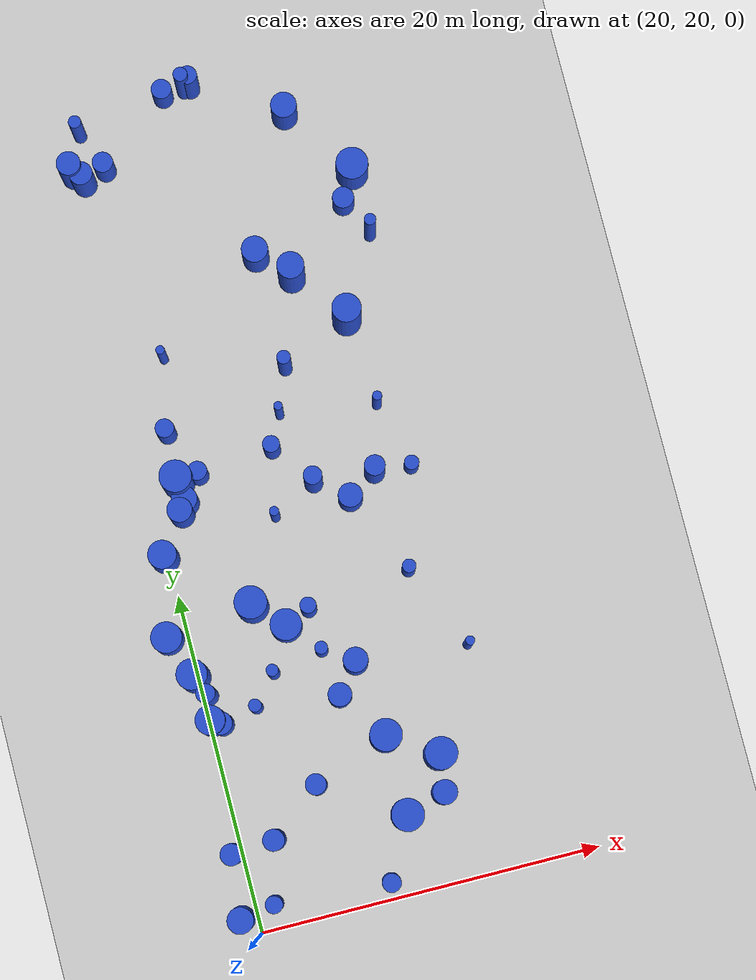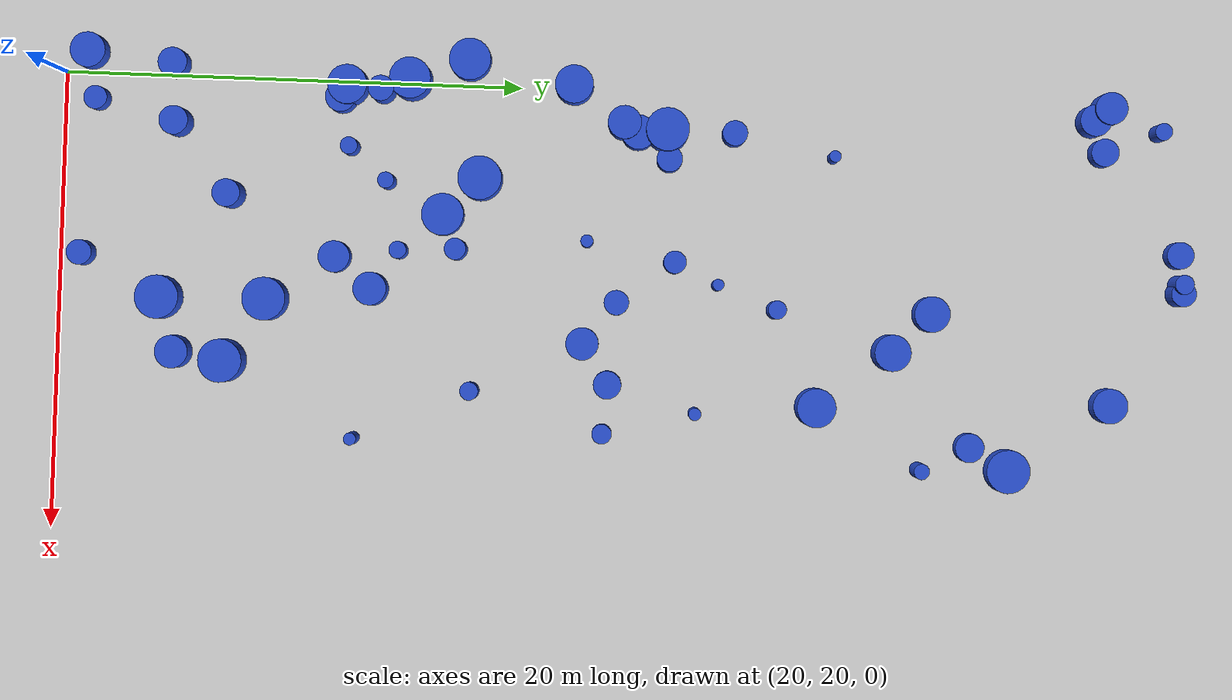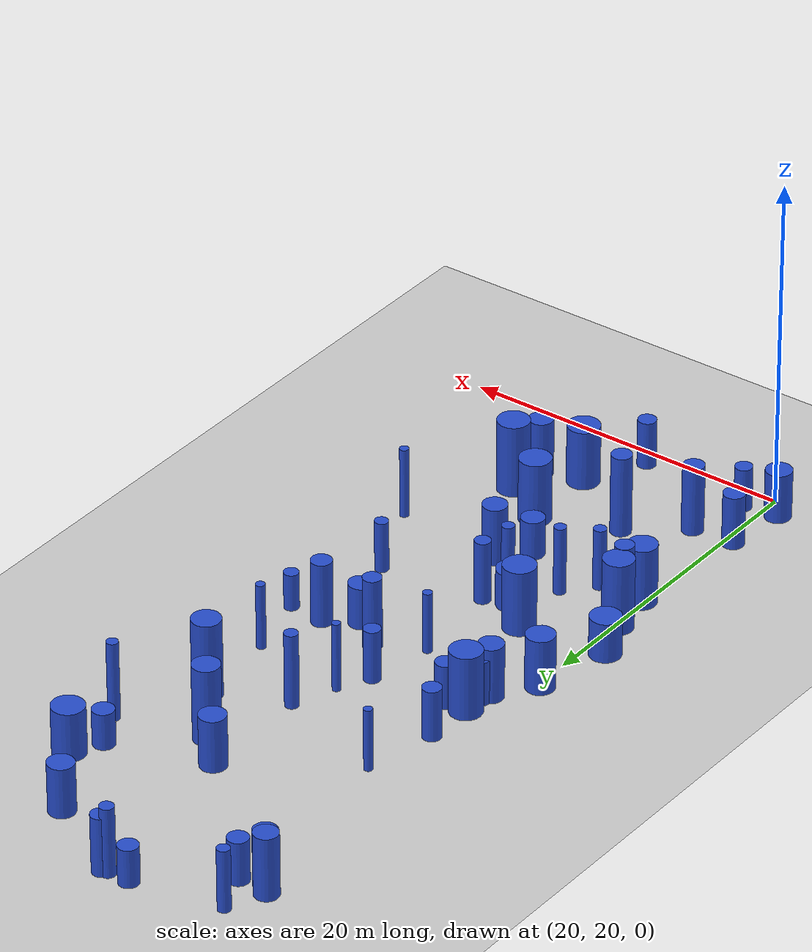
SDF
<sdf version="1.7">
 <world name="default">
  <model name="ground_plane">
   <static>1</static>
   <link name="link">
    <collision name="collision">
     <geometry><plane><normal>0 0 1</normal><size>100 100</size></plane></geometry>
     <surface>
      <contact><collide_bitmask>65535</collide_bitmask></contact>
      <friction><ode><mu>100</mu><mu2>50</mu2></ode></friction>
     </surface>
    </collision>
    <visual name="visual">
     <cast_shadows>0</cast_shadows>
     <geometry><plane><normal>0 0 1</normal><size>100 100</size></plane></geometry>
     <material>
      <script><uri>file://media/materials/scripts/gazebo.material</uri><name>Gazebo/Grey</name></script>
     </material>
    </visual>
   </link>
  </model>
  <model name="8">
   <static>0</static>
   <link name="link">
    <inertial>
     <mass>2</mass>
     <inertia><ixx>2.56634</ixx><ixy>0</ixy><ixz>0</ixz><iyy>2.56634</iyy><iyz>0</iyz><izz>0.222806</izz></inertia>
    </inertial>
    <collision name="collision">
     <geometry><cylinder><length>3.83792</length><radius>0.472024</radius></cylinder></geometry>
     <surface><contact><collide_without_contact>1</collide_without_contact></contact></surface>
    </collision>
    <visual name="visual">
     <geometry><cylinder><length>3.83792</length><radius>0.472024</radius></cylinder></geometry>
     <material>
      <script><uri>file://media/materials/scripts/gazebo.material</uri><name>Gazebo/Blue</name></script>
     </material>
    </visual>
    <gravity>0</gravity>
   </link>
   <pose>27.1858 37.3797 1.91896 0 -0 0</pose>
  </model>
  <model name="22">
   <static>0</static>
   <link name="link">
    <inertial>
     <mass>2</mass>
     <inertia><ixx>1.84413</ixx><ixy>0</ixy><ixz>0</ixz><iyy>1.84413</iyy><iyz>0</iyz><izz>0.585229</izz></inertia>
    </inertial>
    <collision name="collision">
     <geometry><cylinder><length>3.05108</length><radius>0.765002</radius></cylinder></geometry>
     <surface><contact><collide_without_contact>1</collide_without_contact></contact></surface>
    </collision>
    <visual name="visual">
     <geometry><cylinder><length>3.05108</length><radius>0.765002</radius></cylinder></geometry>
     <material>
      <script><uri>file://media/materials/scripts/gazebo.material</uri><name>Gazebo/Blue</name></script>
     </material>
    </visual>
    <gravity>0</gravity>
   </link>
   <pose>32.9776 66.0821 1.52554 0 -0 0</pose>
  </model>
  <model name="26">
   <static>0</static>
   <link name="link">
    <inertial>
     <mass>2</mass>
     <inertia><ixx>1.40947</ixx><ixy>0</ixy><ixz>0</ixz><iyy>1.40947</iyy><iyz>0</iyz><izz>0.829551</izz></inertia>
    </inertial>
    <collision name="collision">
     <geometry><cylinder><length>2.44298</length><radius>0.910797</radius></cylinder></geometry>
     <surface><contact><collide_without_contact>1</collide_without_contact></contact></surface>
    </collision>
    <visual name="visual">
     <geometry><cylinder><length>2.44298</length><radius>0.910797</radius></cylinder></geometry>
     <material>
      <script><uri>file://media/materials/scripts/gazebo.material</uri><name>Gazebo/Blue</name></script>
     </material>
    </visual>
    <gravity>0</gravity>
   </link>
   <pose>18.8758 37.6973 1.22149 0 -0 0</pose>
  </model>
  <model name="45">
   <static>0</static>
   <link name="link">
    <inertial>
     <mass>2</mass>
     <inertia><ixx>1.79897</ixx><ixy>0</ixy><ixz>0</ixz><iyy>1.79897</iyy><iyz>0</iyz><izz>0.441379</izz></inertia>
    </inertial>
    <collision name="collision">
     <geometry><cylinder><length>3.07729</length><radius>0.664364</radius></cylinder></geometry>
     <surface><contact><collide_without_contact>1</collide_without_contact></contact></surface>
    </collision>
    <visual name="visual">
     <geometry><cylinder><length>3.07729</length><radius>0.664364</radius></cylinder></geometry>
     <material>
      <script><uri>file://media/materials/scripts/gazebo.material</uri><name>Gazebo/Blue</name></script>
     </material>
    </visual>
    <gravity>0</gravity>
   </link>
   <pose>20.7318 32.1487 1.53864 0 -0 0</pose>
  </model>
  <model name="57">
   <static>0</static>
   <link name="link">
    <inertial>
     <mass>2</mass>
     <inertia><ixx>2.18418</ixx><ixy>0</ixy><ixz>0</ixz><iyy>2.18418</iyy><iyz>0</iyz><izz>0.482198</izz></inertia>
    </inertial>
    <collision name="collision">
     <geometry><cylinder><length>3.41445</length><radius>0.694405</radius></cylinder></geometry>
     <surface><contact><collide_without_contact>1</collide_without_contact></contact></surface>
    </collision>
    <visual name="visual">
     <geometry><cylinder><length>3.41445</length><radius>0.694405</radius></cylinder></geometry>
     <material>
      <script><uri>file://media/materials/scripts/gazebo.material</uri><name>Gazebo/Blue</name></script>
     </material>
    </visual>
    <gravity>0</gravity>
   </link>
   <pose>20.5826 64.9886 1.70723 0 -0 0</pose>
  </model>
  <model name="74">
   <static>0</static>
   <link name="link">
    <inertial>
     <mass>2</mass>
     <inertia><ixx>3.58592</ixx><ixy>0</ixy><ixz>0</ixz><iyy>3.58592</iyy><iyz>0</iyz><izz>0.162136</izz></inertia>
    </inertial>
    <collision name="collision">
     <geometry><cylinder><length>4.58575</length><radius>0.402661</radius></cylinder></geometry>
     <surface><contact><collide_without_contact>1</collide_without_contact></contact></surface>
    </collision>
    <visual name="visual">
     <geometry><cylinder><length>4.58575</length><radius>0.402661</radius></cylinder></geometry>
     <material>
      <script><uri>file://media/materials/scripts/gazebo.material</uri><name>Gazebo/Blue</name></script>
     </material>
    </visual>
    <gravity>0</gravity>
   </link>
   <pose>29.3238 51.4291 2.29288 0 -0 0</pose>
  </model>
  <model name="79">
   <static>0</static>
   <link name="link">
    <inertial>
     <mass>2</mass>
     <inertia><ixx>2.97852</ixx><ixy>0</ixy><ixz>0</ixz><iyy>2.97852</iyy><iyz>0</iyz><izz>0.125524</izz></inertia>
    </inertial>
    <collision name="collision">
     <geometry><cylinder><length>4.18265</length><radius>0.354294</radius></cylinder></geometry>
     <surface><contact><collide_without_contact>1</collide_without_contact></contact></surface>
    </collision>
    <visual name="visual">
     <geometry><cylinder><length>4.18265</length><radius>0.354294</radius></cylinder></geometry>
     <material>
      <script><uri>file://media/materials/scripts/gazebo.material</uri><name>Gazebo/Blue</name></script>
     </material>
    </visual>
    <gravity>0</gravity>
   </link>
   <pose>24.318 34.2798 2.09133 0 -0 0</pose>
  </model>
  <model name="82">
   <static>0</static>
   <link name="link">
    <inertial>
     <mass>2</mass>
     <inertia><ixx>1.92476</ixx><ixy>0</ixy><ixz>0</ixz><iyy>1.92476</iyy><iyz>0</iyz><izz>0.900452</izz></inertia>
    </inertial>
    <collision name="collision">
     <geometry><cylinder><length>2.97442</length><radius>0.948921</radius></cylinder></geometry>
     <surface><contact><collide_without_contact>1</collide_without_contact></contact></surface>
    </collision>
    <visual name="visual">
     <geometry><cylinder><length>2.97442</length><radius>0.948921</radius></cylinder></geometry>
     <material>
      <script><uri>file://media/materials/scripts/gazebo.material</uri><name>Gazebo/Blue</name></script>
     </material>
    </visual>
    <gravity>0</gravity>
   </link>
   <pose>35.9886 61.7636 1.48721 0 -0 0</pose>
  </model>
  <model name="99">
   <static>0</static>
   <link name="link">
    <inertial>
     <mass>2</mass>
     <inertia><ixx>2.24551</ixx><ixy>0</ixy><ixz>0</ixz><iyy>2.24551</iyy><iyz>0</iyz><izz>0.698313</izz></inertia>
    </inertial>
    <collision name="collision">
     <geometry><cylinder><length>3.37315</length><radius>0.835651</radius></cylinder></geometry>
     <surface><contact><collide_without_contact>1</collide_without_contact></contact></surface>
    </collision>
    <visual name="visual">
     <geometry><cylinder><length>3.37315</length><radius>0.835651</radius></cylinder></geometry>
     <material>
      <script><uri>file://media/materials/scripts/gazebo.material</uri><name>Gazebo/Blue</name></script>
     </material>
    </visual>
    <gravity>0</gravity>
   </link>
   <pose>19.8304 42.2869 1.68657 0 -0 0</pose>
  </model>
  <model name="100">
   <static>0</static>
   <link name="link">
    <inertial>
     <mass>2</mass>
     <inertia><ixx>1.16576</ixx><ixy>0</ixy><ixz>0</ixz><iyy>1.16576</iyy><iyz>0</iyz><izz>0.479179</izz></inertia>
    </inertial>
    <collision name="collision">
     <geometry><cylinder><length>2.35733</length><radius>0.692228</radius></cylinder></geometry>
     <surface><contact><collide_without_contact>1</collide_without_contact></contact></surface>
    </collision>
    <visual name="visual">
     <geometry><cylinder><length>2.35733</length><radius>0.692228</radius></cylinder></geometry>
     <material>
      <script><uri>file://media/materials/scripts/gazebo.material</uri><name>Gazebo/Blue</name></script>
     </material>
    </visual>
    <gravity>0</gravity>
   </link>
   <pose>27.6909 32.0771 1.17867 0 -0 0</pose>
  </model>
  <model name="102">
   <static>0</static>
   <link name="link">
    <inertial>
     <mass>2</mass>
     <inertia><ixx>2.03174</ixx><ixy>0</ixy><ixz>0</ixz><iyy>2.03174</iyy><iyz>0</iyz><izz>0.142404</izz></inertia>
    </inertial>
    <collision name="collision">
     <geometry><cylinder><length>3.42975</length><radius>0.377365</radius></cylinder></geometry>
     <surface><contact><collide_without_contact>1</collide_without_contact></contact></surface>
    </collision>
    <visual name="visual">
     <geometry><cylinder><length>3.42975</length><radius>0.377365</radius></cylinder></geometry>
     <material>
      <script><uri>file://media/materials/scripts/gazebo.material</uri><name>Gazebo/Blue</name></script>
     </material>
    </visual>
    <gravity>0</gravity>
   </link>
   <pose>27.3172 34.8756 1.71488 0 -0 0</pose>
  </model>
  <model name="120">
   <static>0</static>
   <link name="link">
    <inertial>
     <mass>2</mass>
     <inertia><ixx>1.34975</ixx><ixy>0</ixy><ixz>0</ixz><iyy>1.34975</iyy><iyz>0</iyz><izz>0.510108</izz></inertia>
    </inertial>
    <collision name="collision">
     <geometry><cylinder><length>2.56285</length><radius>0.714219</radius></cylinder></geometry>
     <surface><contact><collide_without_contact>1</collide_without_contact></contact></surface>
    </collision>
    <visual name="visual">
     <geometry><cylinder><length>2.56285</length><radius>0.714219</radius></cylinder></geometry>
     <material>
      <script><uri>file://media/materials/scripts/gazebo.material</uri><name>Gazebo/Blue</name></script>
     </material>
    </visual>
    <gravity>0</gravity>
   </link>
   <pose>31.1048 43.0271 1.28142 0 -0 0</pose>
  </model>
  <model name="126">
   <static>0</static>
   <link name="link">
    <inertial>
     <mass>2</mass>
     <inertia><ixx>1.99303</ixx><ixy>0</ixy><ixz>0</ixz><iyy>1.99303</iyy><iyz>0</iyz><izz>0.607698</izz></inertia>
    </inertial>
    <collision name="collision">
     <geometry><cylinder><length>3.18356</length><radius>0.77955</radius></cylinder></geometry>
     <surface><contact><collide_without_contact>1</collide_without_contact></contact></surface>
    </collision>
    <visual name="visual">
     <geometry><cylinder><length>3.18356</length><radius>0.77955</radius></cylinder></geometry>
     <material>
      <script><uri>file://media/materials/scripts/gazebo.material</uri><name>Gazebo/Blue</name></script>
     </material>
    </visual>
    <gravity>0</gravity>
   </link>
   <pose>29.2657 58.2032 1.59178 0 -0 0</pose>
  </model>
  <model name="128">
   <static>0</static>
   <link name="link">
    <inertial>
     <mass>2</mass>
     <inertia><ixx>2.677</ixx><ixy>0</ixy><ixz>0</ixz><iyy>2.677</iyy><iyz>0</iyz><izz>0.902624</izz></inertia>
    </inertial>
    <collision name="collision">
     <geometry><cylinder><length>3.65433</length><radius>0.950065</radius></cylinder></geometry>
     <surface><contact><collide_without_contact>1</collide_without_contact></contact></surface>
    </collision>
    <visual name="visual">
     <geometry><cylinder><length>3.65433</length><radius>0.950065</radius></cylinder></geometry>
     <material>
      <script><uri>file://media/materials/scripts/gazebo.material</uri><name>Gazebo/Blue</name></script>
     </material>
    </visual>
    <gravity>0</gravity>
   </link>
   <pose>29.7312 24.4966 1.82716 0 -0 0</pose>
  </model>
  <model name="129">
   <static>0</static>
   <link name="link">
    <inertial>
     <mass>2</mass>
     <inertia><ixx>4.2289</ixx><ixy>0</ixy><ixz>0</ixz><iyy>4.2289</iyy><iyz>0</iyz><izz>0.722048</izz></inertia>
    </inertial>
    <collision name="collision">
     <geometry><cylinder><length>4.81739</length><radius>0.849734</radius></cylinder></geometry>
     <surface><contact><collide_without_contact>1</collide_without_contact></contact></surface>
    </collision>
    <visual name="visual">
     <geometry><cylinder><length>4.81739</length><radius>0.849734</radius></cylinder></geometry>
     <material>
      <script><uri>file://media/materials/scripts/gazebo.material</uri><name>Gazebo/Blue</name></script>
     </material>
    </visual>
    <gravity>0</gravity>
   </link>
   <pose>33.5048 53.2725 2.40869 0 -0 0</pose>
  </model>
  <model name="136">
   <static>0</static>
   <link name="link">
    <inertial>
     <mass>2</mass>
     <inertia>
      <ixx>2.36535</ixx>
      <ixy>0</ixy>
      <ixz>0</ixz>
      <iyy>2.36535</iyy>
      <iyz>0</iyz>
      <izz>0.0754725</izz>
     </inertia>
    </inertial>
    <collision name="collision">
     <geometry><cylinder><length>3.73706</length><radius>0.274723</radius></cylinder></geometry>
     <surface><contact><collide_without_contact>1</collide_without_contact></contact></surface>
    </collision>
    <visual name="visual">
     <geometry><cylinder><length>3.73706</length><radius>0.274723</radius></cylinder></geometry>
     <material>
      <script><uri>file://media/materials/scripts/gazebo.material</uri><name>Gazebo/Blue</name></script>
     </material>
    </visual>
    <gravity>0</gravity>
   </link>
   <pose>26.6336 43.0819 1.86853 0 -0 0</pose>
  </model>
  <model name="141">
   <static>0</static>
   <link name="link">
    <inertial>
     <mass>2</mass>
     <inertia><ixx>2.67739</ixx><ixy>0</ixy><ixz>0</ixz><iyy>2.67739</iyy><iyz>0</iyz><izz>0.739102</izz></inertia>
    </inertial>
    <collision name="collision">
     <geometry><cylinder><length>3.72116</length><radius>0.85971</radius></cylinder></geometry>
     <surface><contact><collide_without_contact>1</collide_without_contact></contact></surface>
    </collision>
    <visual name="visual">
     <geometry><cylinder><length>3.72116</length><radius>0.85971</radius></cylinder></geometry>
     <material>
      <script><uri>file://media/materials/scripts/gazebo.material</uri><name>Gazebo/Blue</name></script>
     </material>
    </visual>
    <gravity>0</gravity>
   </link>
   <pose>20.2068 32.4414 1.86058 0 -0 0</pose>
  </model>
  <model name="144">
   <static>0</static>
   <link name="link">
    <inertial>
     <mass>2</mass>
     <inertia><ixx>2.96724</ixx><ixy>0</ixy><ixz>0</ixz><iyy>2.96724</iyy><iyz>0</iyz><izz>0.88856</izz></inertia>
    </inertial>
    <collision name="collision">
     <geometry><cylinder><length>3.89073</length><radius>0.942635</radius></cylinder></geometry>
     <surface><contact><collide_without_contact>1</collide_without_contact></contact></surface>
    </collision>
    <visual name="visual">
     <geometry><cylinder><length>3.89073</length><radius>0.942635</radius></cylinder></geometry>
     <material>
      <script><uri>file://media/materials/scripts/gazebo.material</uri><name>Gazebo/Blue</name></script>
     </material>
    </visual>
    <gravity>0</gravity>
   </link>
   <pose>21.6567 46.4145 1.94536 0 -0 0</pose>
  </model>
  <model name="147">
   <static>0</static>
   <link name="link">
    <inertial>
     <mass>2</mass>
     <inertia><ixx>1.3619</ixx><ixy>0</ixy><ixz>0</ixz><iyy>1.3619</iyy><iyz>0</iyz><izz>0.369863</izz></inertia>
    </inertial>
    <collision name="collision">
     <geometry><cylinder><length>2.65741</length><radius>0.608163</radius></cylinder></geometry>
     <surface><contact><collide_without_contact>1</collide_without_contact></contact></surface>
    </collision>
    <visual name="visual">
     <geometry><cylinder><length>2.65741</length><radius>0.608163</radius></cylinder></geometry>
     <material>
      <script><uri>file://media/materials/scripts/gazebo.material</uri><name>Gazebo/Blue</name></script>
     </material>
    </visual>
    <gravity>0</gravity>
   </link>
   <pose>21.9552 65.4838 1.3287 0 -0 0</pose>
  </model>
  <model name="154">
   <static>0</static>
   <link name="link">
    <inertial>
     <mass>2</mass>
     <inertia><ixx>1.7028</ixx><ixy>0</ixy><ixz>0</ixz><iyy>1.7028</iyy><iyz>0</iyz><izz>0.159402</izz></inertia>
    </inertial>
    <collision name="collision">
     <geometry><cylinder><length>3.12067</length><radius>0.399252</radius></cylinder></geometry>
     <surface><contact><collide_without_contact>1</collide_without_contact></contact></surface>
    </collision>
    <visual name="visual">
     <geometry><cylinder><length>3.12067</length><radius>0.399252</radius></cylinder></geometry>
     <material>
      <script><uri>file://media/materials/scripts/gazebo.material</uri><name>Gazebo/Blue</name></script>
     </material>
    </visual>
    <gravity>0</gravity>
   </link>
   <pose>33.3423 38.1868 1.56033 0 -0 0</pose>
  </model>
  <model name="162">
   <static>0</static>
   <link name="link">
    <inertial>
     <mass>2</mass>
     <inertia><ixx>3.96253</ixx><ixy>0</ixy><ixz>0</ixz><iyy>3.96253</iyy><iyz>0</iyz><izz>0.116789</izz></inertia>
    </inertial>
    <collision name="collision">
     <geometry><cylinder><length>4.83992</length><radius>0.341744</radius></cylinder></geometry>
     <surface><contact><collide_without_contact>1</collide_without_contact></contact></surface>
    </collision>
    <visual name="visual">
     <geometry><cylinder><length>4.83992</length><radius>0.341744</radius></cylinder></geometry>
     <material>
      <script><uri>file://media/materials/scripts/gazebo.material</uri><name>Gazebo/Blue</name></script>
     </material>
    </visual>
    <gravity>0</gravity>
   </link>
   <pose>36.0875 57.9111 2.41996 0 -0 0</pose>
  </model>
  <model name="180">
   <static>0</static>
   <link name="link">
    <inertial>
     <mass>2</mass>
     <inertia><ixx>2.42849</ixx><ixy>0</ixy><ixz>0</ixz><iyy>2.42849</iyy><iyz>0</iyz><izz>0.141849</izz></inertia>
    </inertial>
    <collision name="collision">
     <geometry><cylinder><length>3.76103</length><radius>0.376628</radius></cylinder></geometry>
     <surface><contact><collide_without_contact>1</collide_without_contact></contact></surface>
    </collision>
    <visual name="visual">
     <geometry><cylinder><length>3.76103</length><radius>0.376628</radius></cylinder></geometry>
     <material>
      <script><uri>file://media/materials/scripts/gazebo.material</uri><name>Gazebo/Blue</name></script>
     </material>
    </visual>
    <gravity>0</gravity>
   </link>
   <pose>22.8719 32.6127 1.88052 0 -0 0</pose>
  </model>
  <model name="181">
   <static>0</static>
   <link name="link">
    <inertial>
     <mass>2</mass>
     <inertia><ixx>3.74153</ixx><ixy>0</ixy><ixz>0</ixz><iyy>3.74153</iyy><iyz>0</iyz><izz>0.892176</izz></inertia>
    </inertial>
    <collision name="collision">
     <geometry><cylinder><length>4.44665</length><radius>0.944551</radius></cylinder></geometry>
     <surface><contact><collide_without_contact>1</collide_without_contact></contact></surface>
    </collision>
    <visual name="visual">
     <geometry><cylinder><length>4.44665</length><radius>0.944551</radius></cylinder></geometry>
     <material>
      <script><uri>file://media/materials/scripts/gazebo.material</uri><name>Gazebo/Blue</name></script>
     </material>
    </visual>
    <gravity>0</gravity>
   </link>
   <pose>32.4025 27.387 2.22332 0 -0 0</pose>
  </model>
  <model name="190">
   <static>0</static>
   <link name="link">
    <inertial>
     <mass>2</mass>
     <inertia><ixx>1.0233</ixx><ixy>0</ixy><ixz>0</ixz><iyy>1.0233</iyy><iyz>0</iyz><izz>0.404225</izz></inertia>
    </inertial>
    <collision name="collision">
     <geometry><cylinder><length>2.21971</length><radius>0.635787</radius></cylinder></geometry>
     <surface><contact><collide_without_contact>1</collide_without_contact></contact></surface>
    </collision>
    <visual name="visual">
     <geometry><cylinder><length>2.21971</length><radius>0.635787</radius></cylinder></geometry>
     <material>
      <script><uri>file://media/materials/scripts/gazebo.material</uri><name>Gazebo/Blue</name></script>
     </material>
    </visual>
    <gravity>0</gravity>
   </link>
   <pose>35.027 60.0831 1.10985 0 -0 0</pose>
  </model>
  <model name="196">
   <static>0</static>
   <link name="link">
    <inertial>
     <mass>2</mass>
     <inertia><ixx>0.9402</ixx><ixy>0</ixy><ixz>0</ixz><iyy>0.9402</iyy><iyz>0</iyz><izz>0.188047</izz></inertia>
    </inertial>
    <collision name="collision">
     <geometry><cylinder><length>2.25323</length><radius>0.433644</radius></cylinder></geometry>
     <surface><contact><collide_without_contact>1</collide_without_contact></contact></surface>
    </collision>
    <visual name="visual">
     <geometry><cylinder><length>2.25323</length><radius>0.433644</radius></cylinder></geometry>
     <material>
      <script><uri>file://media/materials/scripts/gazebo.material</uri><name>Gazebo/Blue</name></script>
     </material>
    </visual>
    <gravity>0</gravity>
   </link>
   <pose>35.0117 44.0219 1.12662 0 -0 0</pose>
  </model>
  <model name="204">
   <static>0</static>
   <link name="link">
    <inertial>
     <mass>2</mass>
     <inertia><ixx>1.82067</ixx><ixy>0</ixy><ixz>0</ixz><iyy>1.82067</iyy><iyz>0</iyz><izz>0.591896</izz></inertia>
    </inertial>
    <collision name="collision">
     <geometry><cylinder><length>3.02462</length><radius>0.769348</radius></cylinder></geometry>
     <surface><contact><collide_without_contact>1</collide_without_contact></contact></surface>
    </collision>
    <visual name="visual">
     <geometry><cylinder><length>3.02462</length><radius>0.769348</radius></cylinder></geometry>
     <material>
      <script><uri>file://media/materials/scripts/gazebo.material</uri><name>Gazebo/Blue</name></script>
     </material>
    </visual>
    <gravity>0</gravity>
   </link>
   <pose>19.0958 21.0863 1.51231 0 -0 0</pose>
  </model>
  <model name="221">
   <static>0</static>
   <link name="link">
    <inertial>
     <mass>2</mass>
     <inertia><ixx>2.35666</ixx><ixy>0</ixy><ixz>0</ixz><iyy>2.35666</iyy><iyz>0</iyz><izz>0.516233</izz></inertia>
    </inertial>
    <collision name="collision">
     <geometry><cylinder><length>3.54842</length><radius>0.718494</radius></cylinder></geometry>
     <surface><contact><collide_without_contact>1</collide_without_contact></contact></surface>
    </collision>
    <visual name="visual">
     <geometry><cylinder><length>3.54842</length><radius>0.718494</radius></cylinder></geometry>
     <material>
      <script><uri>file://media/materials/scripts/gazebo.material</uri><name>Gazebo/Blue</name></script>
     </material>
    </visual>
    <gravity>0</gravity>
   </link>
   <pose>32.0931 25.2161 1.77421 0 -0 0</pose>
  </model>
  <model name="222">
   <static>0</static>
   <link name="link">
    <inertial>
     <mass>2</mass>
     <inertia>
      <ixx>2.72442</ixx>
      <ixy>0</ixy>
      <ixz>0</ixz>
      <iyy>2.72442</iyy>
      <iyz>0</iyz>
      <izz>0.0740423</izz>
     </inertia>
    </inertial>
    <collision name="collision">
     <geometry><cylinder><length>4.01552</length><radius>0.272107</radius></cylinder></geometry>
     <surface><contact><collide_without_contact>1</collide_without_contact></contact></surface>
    </collision>
    <visual name="visual">
     <geometry><cylinder><length>4.01552</length><radius>0.272107</radius></cylinder></geometry>
     <material>
      <script><uri>file://media/materials/scripts/gazebo.material</uri><name>Gazebo/Blue</name></script>
     </material>
    </visual>
    <gravity>0</gravity>
   </link>
   <pose>33.9736 48.0351 2.00776 0 -0 0</pose>
  </model>
  <model name="231">
   <static>0</static>
   <link name="link">
    <inertial>
     <mass>2</mass>
     <inertia>
      <ixx>3.14707</ixx>
      <ixy>0</ixy>
      <ixz>0</ixz>
      <iyy>3.14707</iyy>
      <iyz>0</iyz>
      <izz>0.0736251</izz>
     </inertia>
    </inertial>
    <collision name="collision">
     <geometry><cylinder><length>4.3199</length><radius>0.271339</radius></cylinder></geometry>
     <surface><contact><collide_without_contact>1</collide_without_contact></contact></surface>
    </collision>
    <visual name="visual">
     <geometry><cylinder><length>4.3199</length><radius>0.271339</radius></cylinder></geometry>
     <material>
      <script><uri>file://media/materials/scripts/gazebo.material</uri><name>Gazebo/Blue</name></script>
     </material>
    </visual>
    <gravity>0</gravity>
   </link>
   <pose>35.5824 33.1366 2.15995 0 -0 0</pose>
  </model>
  <model name="250">
   <static>0</static>
   <link name="link">
    <inertial>
     <mass>2</mass>
     <inertia><ixx>2.1614</ixx><ixy>0</ixy><ixz>0</ixz><iyy>2.1614</iyy><iyz>0</iyz><izz>0.533303</izz></inertia>
    </inertial>
    <collision name="collision">
     <geometry><cylinder><length>3.37172</length><radius>0.730276</radius></cylinder></geometry>
     <surface><contact><collide_without_contact>1</collide_without_contact></contact></surface>
    </collision>
    <visual name="visual">
     <geometry><cylinder><length>3.37172</length><radius>0.730276</radius></cylinder></geometry>
     <material>
      <script><uri>file://media/materials/scripts/gazebo.material</uri><name>Gazebo/Blue</name></script>
     </material>
    </visual>
    <gravity>0</gravity>
   </link>
   <pose>21.4061 44.5382 1.68586 0 -0 0</pose>
  </model>
  <model name="260">
   <static>0</static>
   <link name="link">
    <inertial>
     <mass>2</mass>
     <inertia><ixx>1.58964</ixx><ixy>0</ixy><ixz>0</ixz><iyy>1.58964</iyy><iyz>0</iyz><izz>0.29895</izz></inertia>
    </inertial>
    <collision name="collision">
     <geometry><cylinder><length>2.93956</length><radius>0.546763</radius></cylinder></geometry>
     <surface><contact><collide_without_contact>1</collide_without_contact></contact></surface>
    </collision>
    <visual name="visual">
     <geometry><cylinder><length>2.93956</length><radius>0.546763</radius></cylinder></geometry>
     <material>
      <script><uri>file://media/materials/scripts/gazebo.material</uri><name>Gazebo/Blue</name></script>
     </material>
    </visual>
    <gravity>0</gravity>
   </link>
   <pose>27.9108 21.0121 1.46978 0 -0 0</pose>
  </model>
  <model name="289">
   <static>0</static>
   <link name="link">
    <inertial>
     <mass>2</mass>
     <inertia><ixx>1.52306</ixx><ixy>0</ixy><ixz>0</ixz><iyy>1.52306</iyy><iyz>0</iyz><izz>0.572277</izz></inertia>
    </inertial>
    <collision name="collision">
     <geometry><cylinder><length>2.72424</length><radius>0.75649</radius></cylinder></geometry>
     <surface><contact><collide_without_contact>1</collide_without_contact></contact></surface>
    </collision>
    <visual name="visual">
     <geometry><cylinder><length>2.72424</length><radius>0.75649</radius></cylinder></geometry>
     <material>
      <script><uri>file://media/materials/scripts/gazebo.material</uri><name>Gazebo/Blue</name></script>
     </material>
    </visual>
    <gravity>0</gravity>
   </link>
   <pose>21.7954 45.1578 1.36212 0 -0 0</pose>
  </model>
  <model name="296">
   <static>0</static>
   <link name="link">
    <inertial>
     <mass>2</mass>
     <inertia><ixx>1.3791</ixx><ixy>0</ixy><ixz>0</ixz><iyy>1.3791</iyy><iyz>0</iyz><izz>0.316834</izz></inertia>
    </inertial>
    <collision name="collision">
     <geometry><cylinder><length>2.70631</length><radius>0.56288</radius></cylinder></geometry>
     <surface><contact><collide_without_contact>1</collide_without_contact></contact></surface>
    </collision>
    <visual name="visual">
     <geometry><cylinder><length>2.70631</length><radius>0.56288</radius></cylinder></geometry>
     <material>
      <script><uri>file://media/materials/scripts/gazebo.material</uri><name>Gazebo/Blue</name></script>
     </material>
    </visual>
    <gravity>0</gravity>
   </link>
   <pose>22.9165 46.552 1.35315 0 -0 0</pose>
  </model>
  <model name="307">
   <static>0</static>
   <link name="link">
    <inertial>
     <mass>2</mass>
     <inertia><ixx>2.42846</ixx><ixy>0</ixy><ixz>0</ixz><iyy>2.42846</iyy><iyz>0</iyz><izz>0.06549</izz></inertia>
    </inertial>
    <collision name="collision">
     <geometry><cylinder><length>3.79134</length><radius>0.25591</radius></cylinder></geometry>
     <surface><contact><collide_without_contact>1</collide_without_contact></contact></surface>
    </collision>
    <visual name="visual">
     <geometry><cylinder><length>3.79134</length><radius>0.25591</radius></cylinder></geometry>
     <material>
      <script><uri>file://media/materials/scripts/gazebo.material</uri><name>Gazebo/Blue</name></script>
     </material>
    </visual>
    <gravity>0</gravity>
   </link>
   <pose>22.5741 53.7191 1.89567 0 -0 0</pose>
  </model>
  <model name="319">
   <static>0</static>
   <link name="link">
    <inertial>
     <mass>2</mass>
     <inertia><ixx>2.77627</ixx><ixy>0</ixy><ixz>0</ixz><iyy>2.77627</iyy><iyz>0</iyz><izz>0.371066</izz></inertia>
    </inertial>
    <collision name="collision">
     <geometry><cylinder><length>3.94264</length><radius>0.609152</radius></cylinder></geometry>
     <surface><contact><collide_without_contact>1</collide_without_contact></contact></surface>
    </collision>
    <visual name="visual">
     <geometry><cylinder><length>3.94264</length><radius>0.609152</radius></cylinder></geometry>
     <material>
      <script><uri>file://media/materials/scripts/gazebo.material</uri><name>Gazebo/Blue</name></script>
     </material>
    </visual>
    <gravity>0</gravity>
   </link>
   <pose>32.8477 44.188 1.97132 0 -0 0</pose>
  </model>
  <model name="326">
   <static>0</static>
   <link name="link">
    <inertial>
     <mass>2</mass>
     <inertia><ixx>3.38613</ixx><ixy>0</ixy><ixz>0</ixz><iyy>3.38613</iyy><iyz>0</iyz><izz>0.312105</izz></inertia>
    </inertial>
    <collision name="collision">
     <geometry><cylinder><length>4.40232</length><radius>0.558663</radius></cylinder></geometry>
     <surface><contact><collide_without_contact>1</collide_without_contact></contact></surface>
    </collision>
    <visual name="visual">
     <geometry><cylinder><length>4.40232</length><radius>0.558663</radius></cylinder></geometry>
     <material>
      <script><uri>file://media/materials/scripts/gazebo.material</uri><name>Gazebo/Blue</name></script>
     </material>
    </visual>
    <gravity>0</gravity>
   </link>
   <pose>20.349 33.9362 2.20116 0 -0 0</pose>
  </model>
  <model name="335">
   <static>0</static>
   <link name="link">
    <inertial>
     <mass>2</mass>
     <inertia><ixx>3.37475</ixx><ixy>0</ixy><ixz>0</ixz><iyy>3.37475</iyy><iyz>0</iyz><izz>0.295029</izz></inertia>
    </inertial>
    <collision name="collision">
     <geometry><cylinder><length>4.40039</length><radius>0.543166</radius></cylinder></geometry>
     <surface><contact><collide_without_contact>1</collide_without_contact></contact></surface>
    </collision>
    <visual name="visual">
     <geometry><cylinder><length>4.40039</length><radius>0.543166</radius></cylinder></geometry>
     <material>
      <script><uri>file://media/materials/scripts/gazebo.material</uri><name>Gazebo/Blue</name></script>
     </material>
    </visual>
    <gravity>0</gravity>
   </link>
   <pose>29.2624 44.458 2.20019 0 -0 0</pose>
  </model>
  <model name="342">
   <static>0</static>
   <link name="link">
    <inertial>
     <mass>2</mass>
     <inertia>
      <ixx>2.98667</ixx>
      <ixy>0</ixy>
      <ixz>0</ixz>
      <iyy>2.98667</iyy>
      <iyz>0</iyz>
      <izz>0.0633312</izz>
     </inertia>
    </inertial>
    <collision name="collision">
     <geometry><cylinder><length>4.2107</length><radius>0.251657</radius></cylinder></geometry>
     <surface><contact><collide_without_contact>1</collide_without_contact></contact></surface>
    </collision>
    <visual name="visual">
     <geometry><cylinder><length>4.2107</length><radius>0.251657</radius></cylinder></geometry>
     <material>
      <script><uri>file://media/materials/scripts/gazebo.material</uri><name>Gazebo/Blue</name></script>
     </material>
    </visual>
    <gravity>0</gravity>
   </link>
   <pose>28.3327 48.8432 2.10535 0 -0 0</pose>
  </model>
  <model name="345">
   <static>0</static>
   <link name="link">
    <inertial>
     <mass>2</mass>
     <inertia><ixx>2.28596</ixx><ixy>0</ixy><ixz>0</ixz><iyy>2.28596</iyy><iyz>0</iyz><izz>0.298648</izz></inertia>
    </inertial>
    <collision name="collision">
     <geometry><cylinder><length>3.58048</length><radius>0.546487</radius></cylinder></geometry>
     <surface><contact><collide_without_contact>1</collide_without_contact></contact></surface>
    </collision>
    <visual name="visual">
     <geometry><cylinder><length>3.58048</length><radius>0.546487</radius></cylinder></geometry>
     <material>
      <script><uri>file://media/materials/scripts/gazebo.material</uri><name>Gazebo/Blue</name></script>
     </material>
    </visual>
    <gravity>0</gravity>
   </link>
   <pose>27.9927 69.0535 1.79024 0 -0 0</pose>
  </model>
  <model name="354">
   <static>0</static>
   <link name="link">
    <inertial>
     <mass>2</mass>
     <inertia><ixx>1.98829</ixx><ixy>0</ixy><ixz>0</ixz><iyy>1.98829</iyy><iyz>0</iyz><izz>0.402852</izz></inertia>
    </inertial>
    <collision name="collision">
     <geometry><cylinder><length>3.27432</length><radius>0.634706</radius></cylinder></geometry>
     <surface><contact><collide_without_contact>1</collide_without_contact></contact></surface>
    </collision>
    <visual name="visual">
     <geometry><cylinder><length>3.27432</length><radius>0.634706</radius></cylinder></geometry>
     <material>
      <script><uri>file://media/materials/scripts/gazebo.material</uri><name>Gazebo/Blue</name></script>
     </material>
    </visual>
    <gravity>0</gravity>
   </link>
   <pose>19.5032 24.8062 1.63716 0 -0 0</pose>
  </model>
  <model name="357">
   <static>0</static>
   <link name="link">
    <inertial>
     <mass>2</mass>
     <inertia><ixx>2.33492</ixx><ixy>0</ixy><ixz>0</ixz><iyy>2.33492</iyy><iyz>0</iyz><izz>0.527707</izz></inertia>
    </inertial>
    <collision name="collision">
     <geometry><cylinder><length>3.52511</length><radius>0.726435</radius></cylinder></geometry>
     <surface><contact><collide_without_contact>1</collide_without_contact></contact></surface>
    </collision>
    <visual name="visual">
     <geometry><cylinder><length>3.52511</length><radius>0.726435</radius></cylinder></geometry>
     <material>
      <script><uri>file://media/materials/scripts/gazebo.material</uri><name>Gazebo/Blue</name></script>
     </material>
    </visual>
    <gravity>0</gravity>
   </link>
   <pose>29.0397 33.7257 1.76255 0 -0 0</pose>
  </model>
  <model name="360">
   <static>0</static>
   <link name="link">
    <inertial>
     <mass>2</mass>
     <inertia><ixx>3.59573</ixx><ixy>0</ixy><ixz>0</ixz><iyy>3.59573</iyy><iyz>0</iyz><izz>0.803388</izz></inertia>
    </inertial>
    <collision name="collision">
     <geometry><cylinder><length>4.3777</length><radius>0.896319</radius></cylinder></geometry>
     <surface><contact><collide_without_contact>1</collide_without_contact></contact></surface>
    </collision>
    <visual name="visual">
     <geometry><cylinder><length>4.3777</length><radius>0.896319</radius></cylinder></geometry>
     <material>
      <script><uri>file://media/materials/scripts/gazebo.material</uri><name>Gazebo/Blue</name></script>
     </material>
    </visual>
    <gravity>0</gravity>
   </link>
   <pose>19.851 35.1741 2.18885 0 -0 0</pose>
  </model>
  <model name="364">
   <static>0</static>
   <link name="link">
    <inertial>
     <mass>2</mass>
     <inertia><ixx>4.31553</ixx><ixy>0</ixy><ixz>0</ixz><iyy>4.31553</iyy><iyz>0</iyz><izz>0.366486</izz></inertia>
    </inertial>
    <collision name="collision">
     <geometry><cylinder><length>4.97933</length><radius>0.605381</radius></cylinder></geometry>
     <surface><contact><collide_without_contact>1</collide_without_contact></contact></surface>
    </collision>
    <visual name="visual">
     <geometry><cylinder><length>4.97933</length><radius>0.605381</radius></cylinder></geometry>
     <material>
      <script><uri>file://media/materials/scripts/gazebo.material</uri><name>Gazebo/Blue</name></script>
     </material>
    </visual>
    <gravity>0</gravity>
   </link>
   <pose>25.1332 27.4316 2.48967 0 -0 0</pose>
  </model>
  <model name="382">
   <static>0</static>
   <link name="link">
    <inertial>
     <mass>2</mass>
     <inertia><ixx>3.17066</ixx><ixy>0</ixy><ixz>0</ixz><iyy>3.17066</iyy><iyz>0</iyz><izz>0.395646</izz></inertia>
    </inertial>
    <collision name="collision">
     <geometry><cylinder><length>4.22339</length><radius>0.629004</radius></cylinder></geometry>
     <surface><contact><collide_without_contact>1</collide_without_contact></contact></surface>
    </collision>
    <visual name="visual">
     <geometry><cylinder><length>4.22339</length><radius>0.629004</radius></cylinder></geometry>
     <material>
      <script><uri>file://media/materials/scripts/gazebo.material</uri><name>Gazebo/Blue</name></script>
     </material>
    </visual>
    <gravity>0</gravity>
   </link>
   <pose>22.0547 25.0017 2.11169 0 -0 0</pose>
  </model>
  <model name="411">
   <static>0</static>
   <link name="link">
    <inertial>
     <mass>2</mass>
     <inertia><ixx>3.12757</ixx><ixy>0</ixy><ixz>0</ixz><iyy>3.12757</iyy><iyz>0</iyz><izz>0.90738</izz></inertia>
    </inertial>
    <collision name="collision">
     <geometry><cylinder><length>4.00541</length><radius>0.952565</radius></cylinder></geometry>
     <surface><contact><collide_without_contact>1</collide_without_contact></contact></surface>
    </collision>
    <visual name="visual">
     <geometry><cylinder><length>4.00541</length><radius>0.952565</radius></cylinder></geometry>
     <material>
      <script><uri>file://media/materials/scripts/gazebo.material</uri><name>Gazebo/Blue</name></script>
     </material>
    </visual>
    <gravity>0</gravity>
   </link>
   <pose>24.0638 38.335 2.0027 0 -0 0</pose>
  </model>
  <model name="421">
   <static>0</static>
   <link name="link">
    <inertial>
     <mass>2</mass>
     <inertia><ixx>2.46144</ixx><ixy>0</ixy><ixz>0</ixz><iyy>2.46144</iyy><iyz>0</iyz><izz>0.140184</izz></inertia>
    </inertial>
    <collision name="collision">
     <geometry><cylinder><length>3.78789</length><radius>0.374411</radius></cylinder></geometry>
     <surface><contact><collide_without_contact>1</collide_without_contact></contact></surface>
    </collision>
    <visual name="visual">
     <geometry><cylinder><length>3.78789</length><radius>0.374411</radius></cylinder></geometry>
     <material>
      <script><uri>file://media/materials/scripts/gazebo.material</uri><name>Gazebo/Blue</name></script>
     </material>
    </visual>
    <gravity>0</gravity>
   </link>
   <pose>20.9897 67.9118 1.89394 0 -0 0</pose>
  </model>
  <model name="423">
   <static>0</static>
   <link name="link">
    <inertial>
     <mass>2</mass>
     <inertia><ixx>1.2988</ixx><ixy>0</ixy><ixz>0</ixz><iyy>1.2988</iyy><iyz>0</iyz><izz>0.845556</izz></inertia>
    </inertial>
    <collision name="collision">
     <geometry><cylinder><length>2.29263</length><radius>0.919541</radius></cylinder></geometry>
     <surface><contact><collide_without_contact>1</collide_without_contact></contact></surface>
    </collision>
    <visual name="visual">
     <geometry><cylinder><length>2.29263</length><radius>0.919541</radius></cylinder></geometry>
     <material>
      <script><uri>file://media/materials/scripts/gazebo.material</uri><name>Gazebo/Blue</name></script>
     </material>
    </visual>
    <gravity>0</gravity>
   </link>
   <pose>25.68 36.7382 1.14632 0 -0 0</pose>
  </model>
  <model name="427">
   <static>0</static>
   <link name="link">
    <inertial>
     <mass>2</mass>
     <inertia><ixx>1.31683</ixx><ixy>0</ixy><ixz>0</ixz><iyy>1.31683</iyy><iyz>0</iyz><izz>0.260574</izz></inertia>
    </inertial>
    <collision name="collision">
     <geometry><cylinder><length>2.66819</length><radius>0.510465</radius></cylinder></geometry>
     <surface><contact><collide_without_contact>1</collide_without_contact></contact></surface>
    </collision>
    <visual name="visual">
     <geometry><cylinder><length>2.66819</length><radius>0.510465</radius></cylinder></geometry>
     <material>
      <script><uri>file://media/materials/scripts/gazebo.material</uri><name>Gazebo/Blue</name></script>
     </material>
    </visual>
    <gravity>0</gravity>
   </link>
   <pose>21.1454 21.4691 1.33409 0 -0 0</pose>
  </model>
  <model name="454">
   <static>0</static>
   <link name="link">
    <inertial>
     <mass>2</mass>
     <inertia><ixx>3.02379</ixx><ixy>0</ixy><ixz>0</ixz><iyy>3.02379</iyy><iyz>0</iyz><izz>0.88218</izz></inertia>
    </inertial>
    <collision name="collision">
     <geometry><cylinder><length>3.93652</length><radius>0.939244</radius></cylinder></geometry>
     <surface><contact><collide_without_contact>1</collide_without_contact></contact></surface>
    </collision>
    <visual name="visual">
     <geometry><cylinder><length>3.93652</length><radius>0.939244</radius></cylinder></geometry>
     <material>
      <script><uri>file://media/materials/scripts/gazebo.material</uri><name>Gazebo/Blue</name></script>
     </material>
    </visual>
    <gravity>0</gravity>
   </link>
   <pose>29.647 29.1624 1.96826 0 -0 0</pose>
  </model>
  <model name="464">
   <static>0</static>
   <link name="link">
    <inertial>
     <mass>2</mass>
     <inertia><ixx>1.84824</ixx><ixy>0</ixy><ixz>0</ixz><iyy>1.84824</iyy><iyz>0</iyz><izz>0.245175</izz></inertia>
    </inertial>
    <collision name="collision">
     <geometry><cylinder><length>3.21775</length><radius>0.495151</radius></cylinder></geometry>
     <surface><contact><collide_without_contact>1</collide_without_contact></contact></surface>
    </collision>
    <visual name="visual">
     <geometry><cylinder><length>3.21775</length><radius>0.495151</radius></cylinder></geometry>
     <material>
      <script><uri>file://media/materials/scripts/gazebo.material</uri><name>Gazebo/Blue</name></script>
     </material>
    </visual>
    <gravity>0</gravity>
   </link>
   <pose>27.4076 46.9409 1.60888 0 -0 0</pose>
  </model>
  <model name="471">
   <static>0</static>
   <link name="link">
    <inertial>
     <mass>2</mass>
     <inertia><ixx>1.07688</ixx><ixy>0</ixy><ixz>0</ixz><iyy>1.07688</iyy><iyz>0</iyz><izz>0.350608</izz></inertia>
    </inertial>
    <collision name="collision">
     <geometry><cylinder><length>2.32582</length><radius>0.592122</radius></cylinder></geometry>
     <surface><contact><collide_without_contact>1</collide_without_contact></contact></surface>
    </collision>
    <visual name="visual">
     <geometry><cylinder><length>2.32582</length><radius>0.592122</radius></cylinder></geometry>
     <material>
      <script><uri>file://media/materials/scripts/gazebo.material</uri><name>Gazebo/Blue</name></script>
     </material>
    </visual>
    <gravity>0</gravity>
   </link>
   <pose>26.3072 68.9516 1.16291 0 -0 0</pose>
  </model>
  <model name="480">
   <static>0</static>
   <link name="link">
    <inertial>
     <mass>2</mass>
     <inertia><ixx>3.97257</ixx><ixy>0</ixy><ixz>0</ixz><iyy>3.97257</iyy><iyz>0</iyz><izz>0.631432</izz></inertia>
    </inertial>
    <collision name="collision">
     <geometry><cylinder><length>4.68413</length><radius>0.794627</radius></cylinder></geometry>
     <surface><contact><collide_without_contact>1</collide_without_contact></contact></surface>
    </collision>
    <visual name="visual">
     <geometry><cylinder><length>4.68413</length><radius>0.794627</radius></cylinder></geometry>
     <material>
      <script><uri>file://media/materials/scripts/gazebo.material</uri><name>Gazebo/Blue</name></script>
     </material>
    </visual>
    <gravity>0</gravity>
   </link>
   <pose>31.0055 56.487 2.34207 0 -0 0</pose>
  </model>
  <model name="481">
   <static>0</static>
   <link name="link">
    <inertial>
     <mass>2</mass>
     <inertia><ixx>2.7128</ixx><ixy>0</ixy><ixz>0</ixz><iyy>2.7128</iyy><iyz>0</iyz><izz>0.497829</izz></inertia>
    </inertial>
    <collision name="collision">
     <geometry><cylinder><length>3.84491</length><radius>0.70557</radius></cylinder></geometry>
     <surface><contact><collide_without_contact>1</collide_without_contact></contact></surface>
    </collision>
    <visual name="visual">
     <geometry><cylinder><length>3.84491</length><radius>0.70557</radius></cylinder></geometry>
     <material>
      <script><uri>file://media/materials/scripts/gazebo.material</uri><name>Gazebo/Blue</name></script>
     </material>
    </visual>
    <gravity>0</gravity>
   </link>
   <pose>20.0571 65.614 1.92245 0 -0 0</pose>
  </model>
  <model name="482">
   <static>0</static>
   <link name="link">
    <inertial>
     <mass>2</mass>
     <inertia><ixx>1.75853</ixx><ixy>0</ixy><ixz>0</ixz><iyy>1.75853</iyy><iyz>0</iyz><izz>0.302622</izz></inertia>
    </inertial>
    <collision name="collision">
     <geometry><cylinder><length>3.10537</length><radius>0.550111</radius></cylinder></geometry>
     <surface><contact><collide_without_contact>1</collide_without_contact></contact></surface>
    </collision>
    <visual name="visual">
     <geometry><cylinder><length>3.10537</length><radius>0.550111</radius></cylinder></geometry>
     <material>
      <script><uri>file://media/materials/scripts/gazebo.material</uri><name>Gazebo/Blue</name></script>
     </material>
    </visual>
    <gravity>0</gravity>
   </link>
   <pose>21.704 49.3537 1.55268 0 -0 0</pose>
  </model>
  <model name="494">
   <static>0</static>
   <link name="link">
    <inertial>
     <mass>2</mass>
     <inertia><ixx>3.08117</ixx><ixy>0</ixy><ixz>0</ixz><iyy>3.08117</iyy><iyz>0</iyz><izz>0.174827</izz></inertia>
    </inertial>
    <collision name="collision">
     <geometry><cylinder><length>4.23822</length><radius>0.418123</radius></cylinder></geometry>
     <surface><contact><collide_without_contact>1</collide_without_contact></contact></surface>
    </collision>
    <visual name="visual">
     <geometry><cylinder><length>4.23822</length><radius>0.418123</radius></cylinder></geometry>
     <material>
      <script><uri>file://media/materials/scripts/gazebo.material</uri><name>Gazebo/Blue</name></script>
     </material>
    </visual>
    <gravity>0</gravity>
   </link>
   <pose>27.5835 69.0221 2.11911 0 -0 0</pose>
  </model>
 </world>
</sdf>
